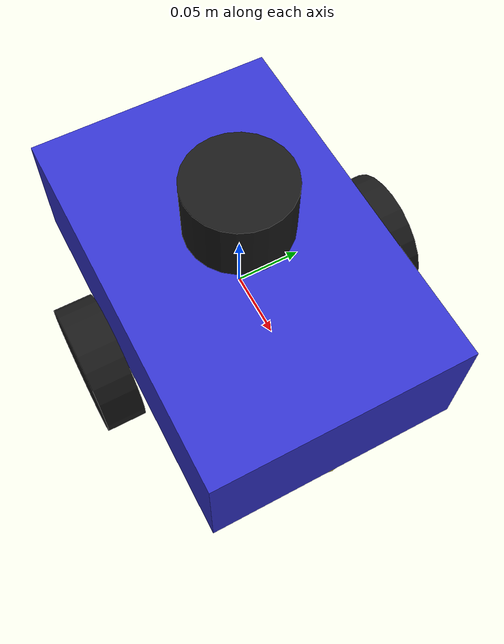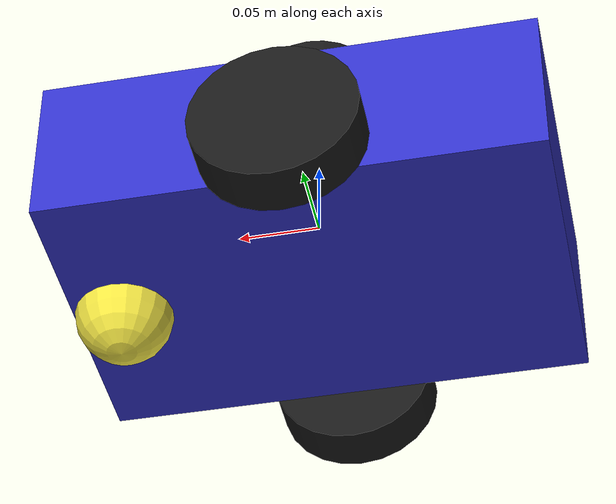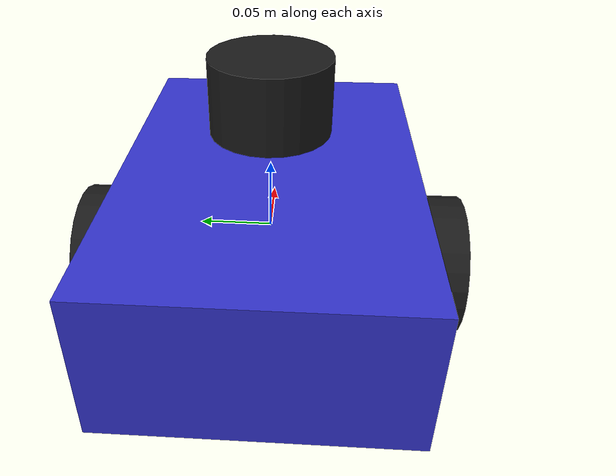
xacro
<?xml version="1.0"?>
<robot name="my_lidar_robot" xmlns:xacro="http://www.ros.org/wiki/xacro">

  <material name="blue">
    <color rgba="0.2 0.2 0.8 1"/>
  </material>
  <material name="black">
    <color rgba="0.1 0.1 0.1 1"/>
  </material>

  <!-- Base Link -->
  <link name="base_link">
    <visual>
      <geometry>
        <box size="0.3 0.2 0.1"/>
      </geometry>
      <material name="blue"/>
    </visual>
    <collision>
      <geometry>
        <box size="0.3 0.2 0.1"/>
      </geometry>
    </collision>
    <inertial>
      <mass value="2.0"/>
      <inertia ixx="0.01" ixy="0.0" ixz="0.0" iyy="0.01" iyz="0.0" izz="0.01"/>
    </inertial>
  </link>

  <!-- Wheels -->
  <xacro:macro name="wheel" params="prefix reflect">
    <link name="${prefix}_wheel">
      <visual>
        <geometry>
          <cylinder radius="0.05" length="0.03"/>
        </geometry>
        <origin rpy="1.5708 0 0" xyz="0 0 0"/>
        <material name="black"/>
      </visual>
      <collision>
        <geometry>
          <cylinder radius="0.05" length="0.03"/>
        </geometry>
        <origin rpy="1.5708 0 0" xyz="0 0 0"/>
      </collision>
      <inertial>
        <mass value="0.2"/>
        <inertia ixx="0.0001" ixy="0.0" ixz="0.0" iyy="0.0001" iyz="0.0" izz="0.0001"/>
      </inertial>
    </link>
    <joint name="${prefix}_wheel_joint" type="continuous">
      <parent link="base_link"/>
      <child link="${prefix}_wheel"/>
      <origin xyz="0 ${reflect*0.12} -0.03" rpy="0 0 0"/>
      <axis xyz="0 1 0"/>
    </joint>
  </xacro:macro>

  <xacro:wheel prefix="left" reflect="1"/>
  <xacro:wheel prefix="right" reflect="-1"/>

  <!-- Caster Wheel -->
  <link name="caster_wheel">
    <visual>
      <geometry>
        <sphere radius="0.03"/>
      </geometry>
    </visual>
    <collision>
      <geometry>
        <sphere radius="0.03"/>
      </geometry>
    </collision>
    <inertial>
      <mass value="0.1"/>
      <inertia ixx="0.00001" ixy="0.0" ixz="0.0" iyy="0.00001" iyz="0.0" izz="0.00001"/>
    </inertial>
  </link>
  <joint name="caster_joint" type="fixed">
    <parent link="base_link"/>
    <child link="caster_wheel"/>
    <origin xyz="0.12 0 -0.05" rpy="0 0 0"/>
  </joint>

  <!-- LiDAR Link -->
  <link name="lidar_link">
    <visual>
      <geometry>
        <cylinder radius="0.04" length="0.05"/>
      </geometry>
      <material name="black"/>
    </visual>
    <collision>
      <geometry>
        <cylinder radius="0.04" length="0.05"/>
      </geometry>
    </collision>
    <inertial>
      <mass value="0.1"/>
      <inertia ixx="0.0001" ixy="0.0" ixz="0.0" iyy="0.0001" iyz="0.0" izz="0.0001"/>
    </inertial>
  </link>
  <joint name="lidar_joint" type="fixed">
    <parent link="base_link"/>
    <child link="lidar_link"/>
    <origin xyz="0 0 0.1" rpy="0 0 0"/>
  </joint>

  <!-- Gazebo LiDAR Plugin -->
  <gazebo reference="lidar_link">
    <sensor name="lidar" type="ray">
      <pose>0 0 0 0 0 0</pose>
      <visualize>true</visualize>
      <update_rate>10</update_rate>
      <ray>
        <scan>
          <horizontal>
            <samples>360</samples>
            <resolution>1</resolution>
            <min_angle>-3.14159</min_angle>
            <max_angle>3.14159</max_angle>
          </horizontal>
        </scan>
        <range>
          <min>0.12</min>
          <max>10.0</max>
          <resolution>0.01</resolution>
        </range>
      </ray>
      <plugin name="scan" filename="libgazebo_ros_ray_sensor.so">
        <ros>
          <argument>~/out:=scan</argument>
        </ros>
        <output_type>sensor_msgs/LaserScan</output_type>
        <frame_name>lidar_link</frame_name>
      </plugin>
    </sensor>
  </gazebo>

  <!-- Gazebo Diff Drive Plugin -->
  <gazebo>
    <plugin name="diff_drive" filename="libgazebo_ros_diff_drive.so">
      <update_rate>30</update_rate>
      <left_joint>left_wheel_joint</left_joint>
      <right_joint>right_wheel_joint</right_joint>
      <wheel_separation>0.24</wheel_separation>
      <wheel_diameter>0.1</wheel_diameter>
      <max_wheel_torque>20</max_wheel_torque>
      <command_topic>cmd_vel</command_topic>
      <odometry_topic>odom</odometry_topic>
      <odometry_frame>odom</odometry_frame>
      <robot_base_frame>base_link</robot_base_frame>
      <publish_odom>true</publish_odom>
      <publish_odom_tf>true</publish_odom_tf>
      <publish_wheel_tf>true</publish_wheel_tf>
    </plugin>
  </gazebo>

</robot>
